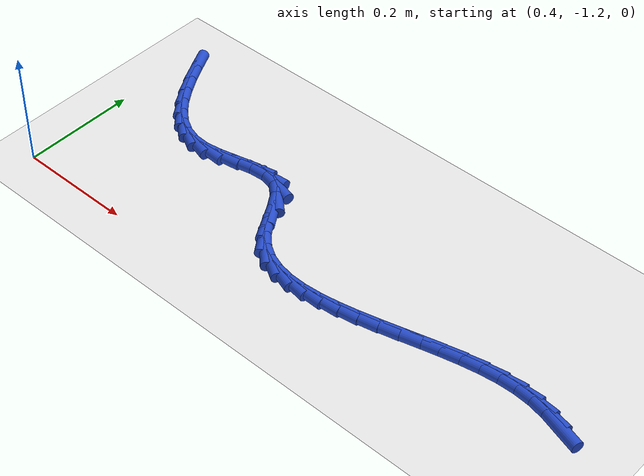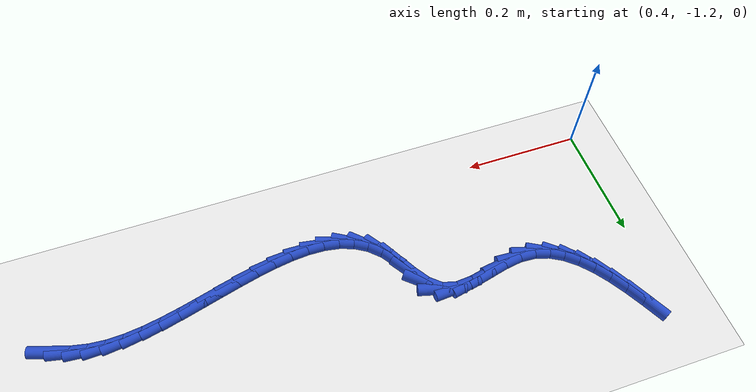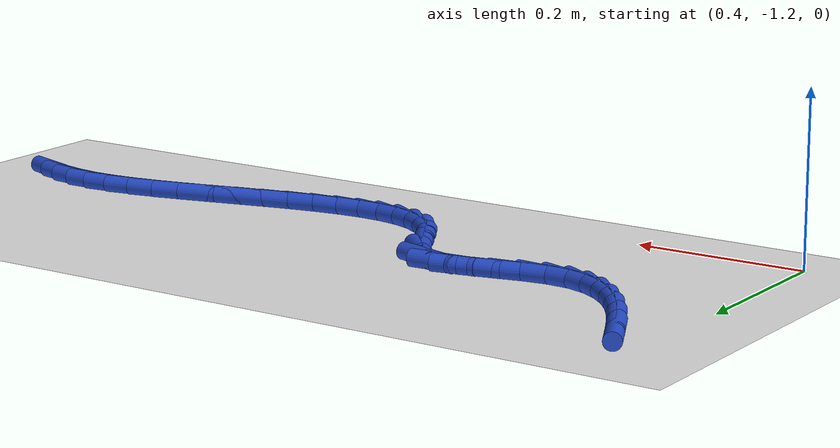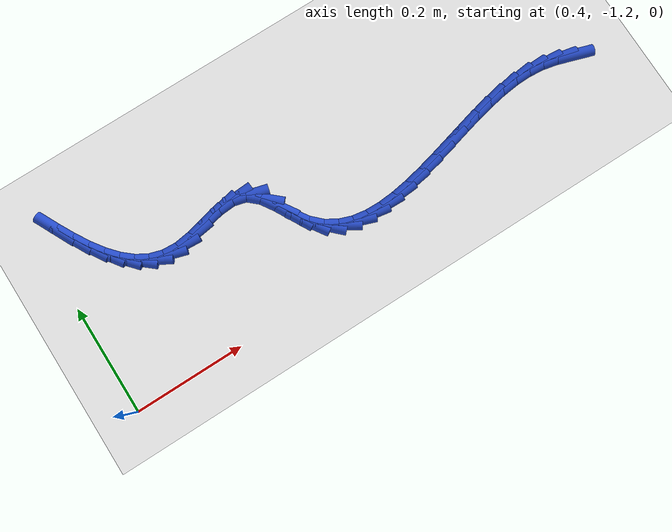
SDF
<sdf version="1.6">
 <world name="default">
  <model name="ground_plane">
   <static>1</static>
   <link name="link">
    <collision name="collision">
     <geometry><plane><normal>0 0 1</normal><size>100 100</size></plane></geometry>
     <surface><friction><ode><mu>100</mu><mu2>50</mu2></ode></friction></surface>
    </collision>
    <visual name="visual">
     <cast_shadows>0</cast_shadows>
     <geometry><plane><normal>0 0 1</normal><size>100 100</size></plane></geometry>
     <material>
      <script><uri>file://media/materials/scripts/gazebo.material</uri><name>Gazebo/WhiteGlow</name></script>
     </material>
    </visual>
   </link>
  </model>
  <model name="line">
   <link name="link_220">
    <pose>1.3495810668489394 -1.0816179922987257 0.01 0 1.57 -0.3100835389340829</pose>
    <collision name="collision">
     <geometry><cylinder><radius>0.01</radius><length>0.08</length></cylinder></geometry>
    </collision>
    <visual name="visual">
     <material>
      <script><name>Gazebo/Blue</name><uri>file://media/materials/scripts/gazebo.material</uri></script>
     </material>
     <geometry><cylinder><radius>0.01</radius><length>0.08</length></cylinder></geometry>
    </visual>
   </link>
   <link name="link_221">
    <pose>1.3228767616269017 -1.0730614090102972 0.01 0 1.57 -0.20615082146592345</pose>
    <collision name="collision">
     <geometry><cylinder><radius>0.01</radius><length>0.08</length></cylinder></geometry>
    </collision>
    <visual name="visual">
     <material>
      <script><name>Gazebo/Blue</name><uri>file://media/materials/scripts/gazebo.material</uri></script>
     </material>
     <geometry><cylinder><radius>0.01</radius><length>0.08</length></cylinder></geometry>
    </visual>
   </link>
   <link name="link_222">
    <pose>1.2963126045798297 -1.067506267922202 0.01 0 1.57 -0.08663095220788058</pose>
    <collision name="collision">
     <geometry><cylinder><radius>0.01</radius><length>0.08</length></cylinder></geometry>
    </collision>
    <visual name="visual">
     <material>
      <script><name>Gazebo/Blue</name><uri>file://media/materials/scripts/gazebo.material</uri></script>
     </material>
     <geometry><cylinder><radius>0.01</radius><length>0.08</length></cylinder></geometry>
    </visual>
   </link>
   <link name="link_223">
    <pose>1.268955548860743 -1.0651303534756287 0.01 0 1.57 0.028614694565806127</pose>
    <collision name="collision">
     <geometry><cylinder><radius>0.01</radius><length>0.08</length></cylinder></geometry>
    </collision>
    <visual name="visual">
     <material>
      <script><name>Gazebo/Blue</name><uri>file://media/materials/scripts/gazebo.material</uri></script>
     </material>
     <geometry><cylinder><radius>0.01</radius><length>0.08</length></cylinder></geometry>
    </visual>
   </link>
   <link name="link_224">
    <pose>1.2401251170899068 -1.0659555527118298 0.01 0 1.57 0.1171132214668936</pose>
    <collision name="collision">
     <geometry><cylinder><radius>0.01</radius><length>0.08</length></cylinder></geometry>
    </collision>
    <visual name="visual">
     <material>
      <script><name>Gazebo/Blue</name><uri>file://media/materials/scripts/gazebo.material</uri></script>
     </material>
     <geometry><cylinder><radius>0.01</radius><length>0.08</length></cylinder></geometry>
    </visual>
   </link>
   <link name="link_225">
    <pose>1.2099471852000891 -1.0695060346136458 0.01 0 1.57 0.18050431014488622</pose>
    <collision name="collision">
     <geometry><cylinder><radius>0.01</radius><length>0.08</length></cylinder></geometry>
    </collision>
    <visual name="visual">
     <material>
      <script><name>Gazebo/Blue</name><uri>file://media/materials/scripts/gazebo.material</uri></script>
     </material>
     <geometry><cylinder><radius>0.01</radius><length>0.08</length></cylinder></geometry>
    </visual>
   </link>
   <link name="link_226">
    <pose>1.1787082026604148 -1.0752068548503018 0.01 0 1.57 0.22348847495237334</pose>
    <collision name="collision">
     <geometry><cylinder><radius>0.01</radius><length>0.08</length></cylinder></geometry>
    </collision>
    <visual name="visual">
     <material>
      <script><name>Gazebo/Blue</name><uri>file://media/materials/scripts/gazebo.material</uri></script>
     </material>
     <geometry><cylinder><radius>0.01</radius><length>0.08</length></cylinder></geometry>
    </visual>
   </link>
   <link name="link_227">
    <pose>1.146694618940008 -1.0824830690910237 0.01 0 1.57 0.24935312503544588</pose>
    <collision name="collision">
     <geometry><cylinder><radius>0.01</radius><length>0.08</length></cylinder></geometry>
    </collision>
    <visual name="visual">
     <material>
      <script><name>Gazebo/Blue</name><uri>file://media/materials/scripts/gazebo.material</uri></script>
     </material>
     <geometry><cylinder><radius>0.01</radius><length>0.08</length></cylinder></geometry>
    </visual>
   </link>
   <link name="link_228">
    <pose>1.1141928835079928 -1.0907597330050363 0.01 0 1.57 0.2600671174714424</pose>
    <collision name="collision">
     <geometry><cylinder><radius>0.01</radius><length>0.08</length></cylinder></geometry>
    </collision>
    <visual name="visual">
     <material>
      <script><name>Gazebo/Blue</name><uri>file://media/materials/scripts/gazebo.material</uri></script>
     </material>
     <geometry><cylinder><radius>0.01</radius><length>0.08</length></cylinder></geometry>
    </visual>
   </link>
   <link name="link_229">
    <pose>1.081489445833494 -1.0994619022615655 0.01 0 1.57 0.2564307938768345</pose>
    <collision name="collision">
     <geometry><cylinder><radius>0.01</radius><length>0.08</length></cylinder></geometry>
    </collision>
    <visual name="visual">
     <material>
      <script><name>Gazebo/Blue</name><uri>file://media/materials/scripts/gazebo.material</uri></script>
     </material>
     <geometry><cylinder><radius>0.01</radius><length>0.08</length></cylinder></geometry>
    </visual>
   </link>
   <link name="link_230">
    <pose>1.048870755385635 -1.1080146325298357 0.01 0 1.57 0.23815142370113465</pose>
    <collision name="collision">
     <geometry><cylinder><radius>0.01</radius><length>0.08</length></cylinder></geometry>
    </collision>
    <visual name="visual">
     <material>
      <script><name>Gazebo/Blue</name><uri>file://media/materials/scripts/gazebo.material</uri></script>
     </material>
     <geometry><cylinder><radius>0.01</radius><length>0.08</length></cylinder></geometry>
    </visual>
   </link>
   <link name="link_231">
    <pose>1.0166232616335409 -1.1158429794790736 0.01 0 1.57 0.2038112068140463</pose>
    <collision name="collision">
     <geometry><cylinder><radius>0.01</radius><length>0.08</length></cylinder></geometry>
    </collision>
    <visual name="visual">
     <material>
      <script><name>Gazebo/Blue</name><uri>file://media/materials/scripts/gazebo.material</uri></script>
     </material>
     <geometry><cylinder><radius>0.01</radius><length>0.08</length></cylinder></geometry>
    </visual>
   </link>
   <link name="link_232">
    <pose>0.9850334140463354 -1.1223719987785035 0.01 0 1.57 0.15073669743252324</pose>
    <collision name="collision">
     <geometry><cylinder><radius>0.01</radius><length>0.08</length></cylinder></geometry>
    </collision>
    <visual name="visual">
     <material>
      <script><name>Gazebo/Blue</name><uri>file://media/materials/scripts/gazebo.material</uri></script>
     </material>
     <geometry><cylinder><radius>0.01</radius><length>0.08</length></cylinder></geometry>
    </visual>
   </link>
   <link name="link_233">
    <pose>0.9543876620931441 -1.127026746097351 0.01 0 1.57 0.07483924279347207</pose>
    <collision name="collision">
     <geometry><cylinder><radius>0.01</radius><length>0.08</length></cylinder></geometry>
    </collision>
    <visual name="visual">
     <material>
      <script><name>Gazebo/Blue</name><uri>file://media/materials/scripts/gazebo.material</uri></script>
     </material>
     <geometry><cylinder><radius>0.01</radius><length>0.08</length></cylinder></geometry>
    </visual>
   </link>
   <link name="link_234">
    <pose>0.9249724552430891 -1.129232277104842 0.01 0 1.57 -0.029335026588945528</pose>
    <collision name="collision">
     <geometry><cylinder><radius>0.01</radius><length>0.08</length></cylinder></geometry>
    </collision>
    <visual name="visual">
     <material>
      <script><name>Gazebo/Blue</name><uri>file://media/materials/scripts/gazebo.material</uri></script>
     </material>
     <geometry><cylinder><radius>0.01</radius><length>0.08</length></cylinder></geometry>
    </visual>
   </link>
   <link name="link_235">
    <pose>0.8970742429652958 -1.1284136474702013 0.01 0 1.57 -0.1677056552393433</pose>
    <collision name="collision">
     <geometry><cylinder><radius>0.01</radius><length>0.08</length></cylinder></geometry>
    </collision>
    <visual name="visual">
     <material>
      <script><name>Gazebo/Blue</name><uri>file://media/materials/scripts/gazebo.material</uri></script>
     </material>
     <geometry><cylinder><radius>0.01</radius><length>0.08</length></cylinder></geometry>
    </visual>
   </link>
   <link name="link_236">
    <pose>0.8709794747288881 -1.1239959128626542 0.01 0 1.57 -0.3437114929504553</pose>
    <collision name="collision">
     <geometry><cylinder><radius>0.01</radius><length>0.08</length></cylinder></geometry>
    </collision>
    <visual name="visual">
     <material>
      <script><name>Gazebo/Blue</name><uri>file://media/materials/scripts/gazebo.material</uri></script>
     </material>
     <geometry><cylinder><radius>0.01</radius><length>0.08</length></cylinder></geometry>
    </visual>
   </link>
   <link name="link_237">
    <pose>0.846974600002991 -1.1154041289514267 0.01 0 1.57 -0.5526909633228374</pose>
    <collision name="collision">
     <geometry><cylinder><radius>0.01</radius><length>0.08</length></cylinder></geometry>
    </collision>
    <visual name="visual">
     <material>
      <script><name>Gazebo/Blue</name><uri>file://media/materials/scripts/gazebo.material</uri></script>
     </material>
     <geometry><cylinder><radius>0.01</radius><length>0.08</length></cylinder></geometry>
    </visual>
   </link>
   <link name="link_238">
    <pose>0.825346068256728 -1.1020633514057432 0.01 0 1.57 -0.7773988615719455</pose>
    <collision name="collision">
     <geometry><cylinder><radius>0.01</radius><length>0.08</length></cylinder></geometry>
    </collision>
    <visual name="visual">
     <material>
      <script><name>Gazebo/Blue</name><uri>file://media/materials/scripts/gazebo.material</uri></script>
     </material>
     <geometry><cylinder><radius>0.01</radius><length>0.08</length></cylinder></geometry>
    </visual>
   </link>
   <link name="link_239">
    <pose>0.8063803289592237 -1.0833986358948298 0.01 0 1.57 -0.9845701472116584</pose>
    <collision name="collision">
     <geometry><cylinder><radius>0.01</radius><length>0.08</length></cylinder></geometry>
    </collision>
    <visual name="visual">
     <material>
      <script><name>Gazebo/Blue</name><uri>file://media/materials/scripts/gazebo.material</uri></script>
     </material>
     <geometry><cylinder><radius>0.01</radius><length>0.08</length></cylinder></geometry>
    </visual>
   </link>
   <link name="link_240">
    <pose>0.7902391492671439 -1.0590934281497608 0.01 0 1.57 -1.0729285372011723</pose>
    <collision name="collision">
     <geometry><cylinder><radius>0.01</radius><length>0.08</length></cylinder></geometry>
    </collision>
    <visual name="visual">
     <material>
      <script><name>Gazebo/Blue</name><uri>file://media/materials/scripts/gazebo.material</uri></script>
     </material>
     <geometry><cylinder><radius>0.01</radius><length>0.08</length></cylinder></geometry>
    </visual>
   </link>
   <link name="link_241">
    <pose>0.7755353045866195 -1.032041284993824 0.01 0 1.57 -1.0051075112201464</pose>
    <collision name="collision">
     <geometry><cylinder><radius>0.01</radius><length>0.08</length></cylinder></geometry>
    </collision>
    <visual name="visual">
     <material>
      <script><name>Gazebo/Blue</name><uri>file://media/materials/scripts/gazebo.material</uri></script>
     </material>
     <geometry><cylinder><radius>0.01</radius><length>0.08</length></cylinder></geometry>
    </visual>
   </link>
   <link name="link_242">
    <pose>0.7598328200191478 -1.0073091802389371 0.01 0 1.57 -0.7346278810094953</pose>
    <collision name="collision">
     <geometry><cylinder><radius>0.01</radius><length>0.08</length></cylinder></geometry>
    </collision>
    <visual name="visual">
     <material>
      <script><name>Gazebo/Blue</name><uri>file://media/materials/scripts/gazebo.material</uri></script>
     </material>
     <geometry><cylinder><radius>0.01</radius><length>0.08</length></cylinder></geometry>
    </visual>
   </link>
   <link name="link_243">
    <pose>0.7406759565859445 -0.9900050441956183 0.01 0 1.57 -0.26059966964646164</pose>
    <collision name="collision">
     <geometry><cylinder><radius>0.01</radius><length>0.08</length></cylinder></geometry>
    </collision>
    <visual name="visual">
     <material>
      <script><name>Gazebo/Blue</name><uri>file://media/materials/scripts/gazebo.material</uri></script>
     </material>
     <geometry><cylinder><radius>0.01</radius><length>0.08</length></cylinder></geometry>
    </visual>
   </link>
   <link name="link_244">
    <pose>0.7164174261846612 -0.9835361734851547 0.01 0 1.57 0.06622528631763329</pose>
    <collision name="collision">
     <geometry><cylinder><radius>0.01</radius><length>0.08</length></cylinder></geometry>
    </collision>
    <visual name="visual">
     <material>
      <script><name>Gazebo/Blue</name><uri>file://media/materials/scripts/gazebo.material</uri></script>
     </material>
     <geometry><cylinder><radius>0.01</radius><length>0.08</length></cylinder></geometry>
    </visual>
   </link>
   <link name="link_245">
    <pose>0.6882162768739285 -0.9854065378133781 0.01 0 1.57 0.20870983532385642</pose>
    <collision name="collision">
     <geometry><cylinder><radius>0.01</radius><length>0.08</length></cylinder></geometry>
    </collision>
    <visual name="visual">
     <material>
      <script><name>Gazebo/Blue</name><uri>file://media/materials/scripts/gazebo.material</uri></script>
     </material>
     <geometry><cylinder><radius>0.01</radius><length>0.08</length></cylinder></geometry>
    </visual>
   </link>
   <link name="link_246">
    <pose>0.6578400799131409 -0.9918400352255362 0.01 0 1.57 0.23039217941185705</pose>
    <collision name="collision">
     <geometry><cylinder><radius>0.01</radius><length>0.08</length></cylinder></geometry>
    </collision>
    <visual name="visual">
     <material>
      <script><name>Gazebo/Blue</name><uri>file://media/materials/scripts/gazebo.material</uri></script>
     </material>
     <geometry><cylinder><radius>0.01</radius><length>0.08</length></cylinder></geometry>
    </visual>
   </link>
   <link name="link_247">
    <pose>0.6270564065616936 -0.9990605637668782 0.01 0 1.57 0.1428494528808125</pose>
    <collision name="collision">
     <geometry><cylinder><radius>0.01</radius><length>0.08</length></cylinder></geometry>
    </collision>
    <visual name="visual">
     <material>
      <script><name>Gazebo/Blue</name><uri>file://media/materials/scripts/gazebo.material</uri></script>
     </material>
     <geometry><cylinder><radius>0.01</radius><length>0.08</length></cylinder></geometry>
    </visual>
   </link>
   <link name="link_248">
    <pose>0.5976325692656024 -1.003292568108849 0.01 0 1.57 -0.059077676512455254</pose>
    <collision name="collision">
     <geometry><cylinder><radius>0.01</radius><length>0.08</length></cylinder></geometry>
    </collision>
    <visual name="visual">
     <material>
      <script><name>Gazebo/Blue</name><uri>file://media/materials/scripts/gazebo.material</uri></script>
     </material>
     <geometry><cylinder><radius>0.01</radius><length>0.08</length></cylinder></geometry>
    </visual>
   </link>
   <link name="link_249">
    <pose>0.5708860275689698 -1.0017106036997394 0.01 0 1.57 -0.29457247782495577</pose>
    <collision name="collision">
     <geometry><cylinder><radius>0.01</radius><length>0.08</length></cylinder></geometry>
    </collision>
    <visual name="visual">
     <material>
      <script><name>Gazebo/Blue</name><uri>file://media/materials/scripts/gazebo.material</uri></script>
     </material>
     <geometry><cylinder><radius>0.01</radius><length>0.08</length></cylinder></geometry>
    </visual>
   </link>
   <link name="link_250">
    <pose>0.5467603743840405 -0.9943908978173075 0.01 0 1.57 -0.5177358885762063</pose>
    <collision name="collision">
     <geometry><cylinder><radius>0.01</radius><length>0.08</length></cylinder></geometry>
    </collision>
    <visual name="visual">
     <material>
      <script><name>Gazebo/Blue</name><uri>file://media/materials/scripts/gazebo.material</uri></script>
     </material>
     <geometry><cylinder><radius>0.01</radius><length>0.08</length></cylinder></geometry>
    </visual>
   </link>
   <link name="link_251">
    <pose>0.5249378471434056 -0.9819616729731984 0.01 0 1.57 -0.7059243592817623</pose>
    <collision name="collision">
     <geometry><cylinder><radius>0.01</radius><length>0.08</length></cylinder></geometry>
    </collision>
    <visual name="visual">
     <material>
      <script><name>Gazebo/Blue</name><uri>file://media/materials/scripts/gazebo.material</uri></script>
     </material>
     <geometry><cylinder><radius>0.01</radius><length>0.08</length></cylinder></geometry>
    </visual>
   </link>
   <link name="link_252">
    <pose>0.5051006832796566 -0.9650511516790566 0.01 0 1.57 -0.8519276706012836</pose>
    <collision name="collision">
     <geometry><cylinder><radius>0.01</radius><length>0.08</length></cylinder></geometry>
    </collision>
    <visual name="visual">
     <material>
      <script><name>Gazebo/Blue</name><uri>file://media/materials/scripts/gazebo.material</uri></script>
     </material>
     <geometry><cylinder><radius>0.01</radius><length>0.08</length></cylinder></geometry>
    </visual>
   </link>
   <link name="link_253">
    <pose>0.48693112022538504 -0.944287556446528 0.01 0 1.57 -0.9592926668755115</pose>
    <collision name="collision">
     <geometry><cylinder><radius>0.01</radius><length>0.08</length></cylinder></geometry>
    </collision>
    <visual name="visual">
     <material>
      <script><name>Gazebo/Blue</name><uri>file://media/materials/scripts/gazebo.material</uri></script>
     </material>
     <geometry><cylinder><radius>0.01</radius><length>0.08</length></cylinder></geometry>
    </visual>
   </link>
   <link name="link_254">
    <pose>0.47011139541318214 -0.9202991097872574 0.01 0 1.57 -1.034908320407845</pose>
    <collision name="collision">
     <geometry><cylinder><radius>0.01</radius><length>0.08</length></cylinder></geometry>
    </collision>
    <visual name="visual">
     <material>
      <script><name>Gazebo/Blue</name><uri>file://media/materials/scripts/gazebo.material</uri></script>
     </material>
     <geometry><cylinder><radius>0.01</radius><length>0.08</length></cylinder></geometry>
    </visual>
   </link>
   <link name="link_255">
    <pose>0.4543237462756394 -0.89371403421289 0.01 0 1.57 -1.0850799340644361</pose>
    <collision name="collision">
     <geometry><cylinder><radius>0.01</radius><length>0.08</length></cylinder></geometry>
    </collision>
    <visual name="visual">
     <material>
      <script><name>Gazebo/Blue</name><uri>file://media/materials/scripts/gazebo.material</uri></script>
     </material>
     <geometry><cylinder><radius>0.01</radius><length>0.08</length></cylinder></geometry>
    </visual>
   </link>
   <link name="link_256">
    <pose>0.4392504102453481 -0.8651605522350708 0.01 0 1.57 -1.1144016798668541</pose>
    <collision name="collision">
     <geometry><cylinder><radius>0.01</radius><length>0.08</length></cylinder></geometry>
    </collision>
    <visual name="visual">
     <material>
      <script><name>Gazebo/Blue</name><uri>file://media/materials/scripts/gazebo.material</uri></script>
     </material>
     <geometry><cylinder><radius>0.01</radius><length>0.08</length></cylinder></geometry>
    </visual>
   </link>
  </model>
 </world>
</sdf>
